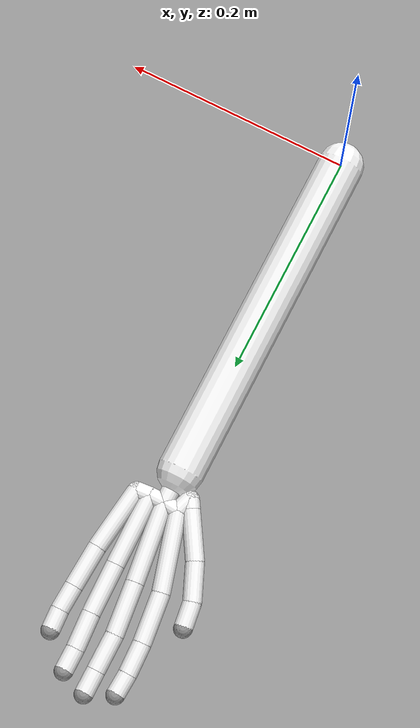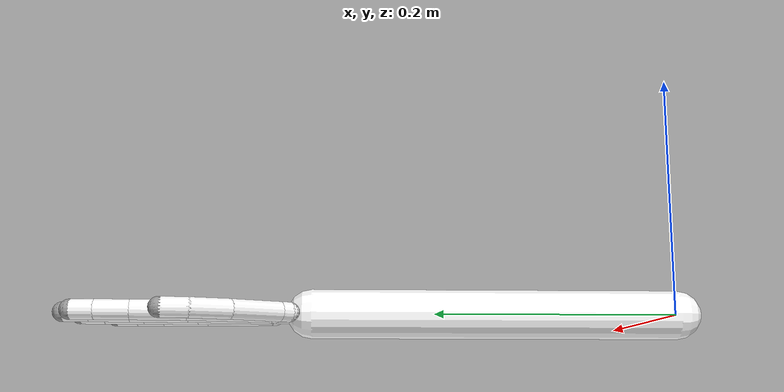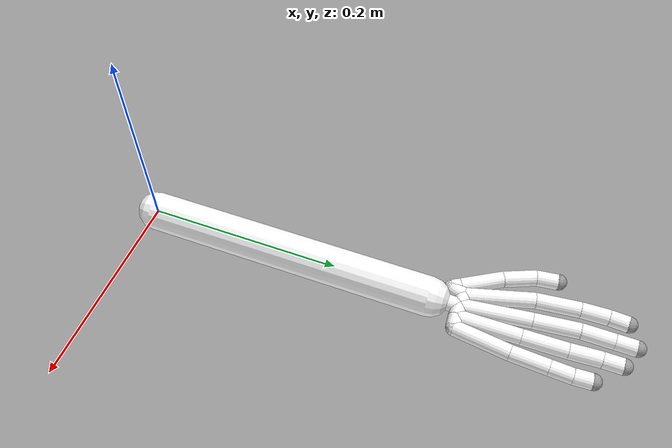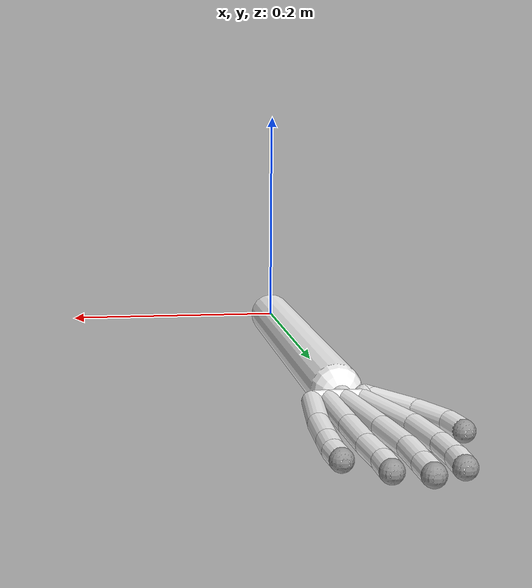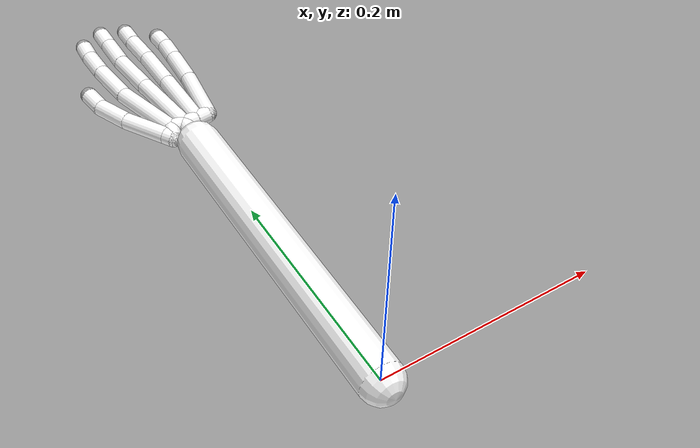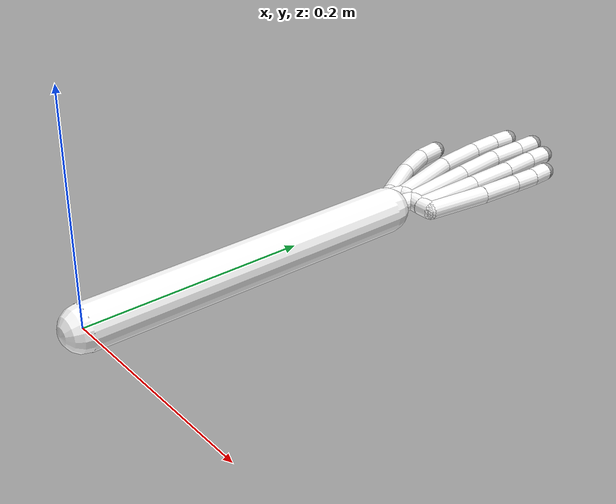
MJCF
<?xml version="1.0" ?>
<mujoco>
  <compiler angle="radian"/>
  <option collision="predefined"/>
  <default>
    <joint limited="true" range="-0.5235987755982988 0.5235987755982988" damping="0.1" armature="0.001"/>
    <position ctrllimited="true" ctrlrange="-0.5235987755982988 0.5235987755982988" kp="1."/>
    <geom rgba="1 1 1 1"/>
  </default>
  <worldbody>
    <body name="toplevel_body1">
      <body name="toplevel_body2">
        <joint name="elbow_pitch" type="hinge" axis="1 0 0" range="-0.6981317007977318 0.6981317007977318" damping="3"/>
        <body name="forearm">
          <geom name="forearm_geom" type="capsule" fromto="0 0 0 0 0.3 0" size="0.02"/>
          <body name="wrist" pos="0 0.3 0">
            <joint name="wrist_pitch" type="hinge" axis="1 0 0" range="-0.6981317007977318 0.6981317007977318" damping="3"/>
            <joint name="wrist_yaw" type="hinge" axis="0 1 0" range="0 1.5707963267948966" damping="3"/>
            <body name="root" pos="0 0 0">
              <geom name="root_geom" type="capsule" fromto="0 0 0 0.0 0.03 0.0" size="0.008"/>
              <body name="middle2index" pos="0.0 0.03 0.0">
                <geom name="middle2index_geom" type="capsule" fromto="0 0 0 -0.013 0.001 0.0" size="0.008"/>
                <body name="index2thumb" pos="-0.013 0.001 0.0">
                  <geom name="index2thumb_geom" type="capsule" fromto="0 0 0 -0.00467199999999999 -0.013741599999999998 0.0" size="0.008"/>
                  <body name="thumb_t" pos="-0.00467199999999999 -0.013741599999999998 0.0">
                    <geom name="thumb_t_geom" type="capsule" fromto="0 0 0 -0.004538000000000003 0.007398599999999999 0.0" size="0.008"/>
                    <joint name="thumb_t_joint" type="hinge" axis="0.3 1.0 0.3" range="-1.5 0"/>
                    <body name="thumb_mc" pos="-0.004538000000000003 0.007398599999999999 0.0">
                      <geom name="thumb_mc_geom" type="capsule" fromto="0 0 0 -0.022690000000000016 0.036993 0.0" size="0.008"/>
                      <joint name="thumb_mc_joint" type="hinge" axis="0.3 -0.5 1.0" range="-0.2 1.2"/>
                      <body name="thumb_pp" pos="-0.022690000000000016 0.036993 0.0">
                        <geom name="thumb_pp_geom" type="capsule" fromto="0 0 0 -0.013099999999999994 0.030350000000000002 0.0" size="0.008"/>
                        <joint name="thumb_pp_joint" type="hinge" axis="0.9181248990731756 0.3962911425983062 0.8" range="-1.5 0"/>
                        <body name="thumb_dp" pos="-0.013099999999999994 0.030350000000000002 0.0">
                          <geom name="thumb_dp_geom" type="capsule" fromto="0 0 0 -0.003 0.022 0.0" size="0.008"/>
                          <joint name="thumb_dp_joint" type="hinge" axis="0.990830168044299 0.1351132047333135 0.8" range="-1.5 0"/>
                          <body name="fingertip_0" pos="-0.003 0.022 0.0">
                            <geom name="fingertip_0_geom" type="sphere" size="0.00808" rgba="0.6 0.6 0.6 1"/>
                          </body>
                        </body>
                      </body>
                    </body>
                  </body>
                </body>
                <body name="index_mc" pos="-0.013 0.001 0.0">
                  <geom name="index_mc_geom" type="capsule" fromto="0 0 0 -0.018999999999999996 0.066 0.0" size="0.008"/>
                  <body name="index_pp" pos="-0.018999999999999996 0.066 0.0">
                    <geom name="index_pp_geom" type="capsule" fromto="0 0 0 -0.005 0.043 0.0" size="0.008"/>
                    <joint name="index_pp_joint" type="hinge" axis="0.9933073803012535 0.11550085817456437 0.0" range="-1.5 0"/>
                    <body name="index_mp" pos="-0.005 0.043 0.0">
                      <geom name="index_mp_geom" type="capsule" fromto="0 0 0 -0.001 0.027 0.0" size="0.008"/>
                      <joint name="index_mp_joint" type="hinge" axis="0.9993148337667671 0.037011660509880265 0.0" range="-1.5 0"/>
                      <body name="index_dp" pos="-0.001 0.027 0.0">
                        <geom name="index_dp_geom" type="capsule" fromto="0 0 0 0.001 0.019 0.0" size="0.008"/>
                        <joint name="index_dp_joint" type="hinge" axis="0.9986178293325098 -0.052558833122763673 0.0" range="-1.5 0"/>
                        <body name="fingertip_1" pos="0.001 0.019 0.0">
                          <geom name="fingertip_1_geom" type="sphere" size="0.00808" rgba="0.6 0.6 0.6 1"/>
                        </body>
                      </body>
                    </body>
                  </body>
                </body>
              </body>
              <body name="middle2ring" pos="0.0 0.03 0.0">
                <geom name="middle2ring_geom" type="capsule" fromto="0 0 0 0.013 0.0 0.0" size="0.008"/>
                <body name="ring2pinky" pos="0.013 0.0 0.0">
                  <geom name="ring2pinky_geom" type="capsule" fromto="0 0 0 0.012 0.001 0.0" size="0.008"/>
                  <body name="pinky_mc" pos="0.012 0.001 0.0">
                    <geom name="pinky_mc_geom" type="capsule" fromto="0 0 0 0.007 0.056 0.0" size="0.008"/>
                    <body name="pinky_pp" pos="0.007 0.056 0.0">
                      <geom name="pinky_pp_geom" type="capsule" fromto="0 0 0 0.002 0.037 0.0" size="0.008"/>
                      <joint name="pinky_pp_joint" type="hinge" axis="0.9985422732775083 -0.05397525801500046 0.0" range="-1.5 0"/>
                      <body name="pinky_mp" pos="0.002 0.037 0.0">
                        <geom name="pinky_mp_geom" type="capsule" fromto="0 0 0 0.001 0.022 0.0" size="0.008"/>
                        <joint name="pinky_mp_joint" type="hinge" axis="0.9989685402102996 -0.045407660918649985 0.0" range="-1.5 0"/>
                        <body name="pinky_dp" pos="0.001 0.022 0.0">
                          <geom name="pinky_dp_geom" type="capsule" fromto="0 0 0 -0.001 0.018 0.0" size="0.008"/>
                          <joint name="pinky_dp_joint" type="hinge" axis="0.9984603532054124 0.05547001962252292 0.0" range="-1.5 0"/>
                          <body name="fingertip_2" pos="-0.001 0.018 0.0">
                            <geom name="fingertip_2_geom" type="sphere" size="0.00808" rgba="0.6 0.6 0.6 1"/>
                          </body>
                        </body>
                      </body>
                    </body>
                  </body>
                </body>
                <body name="ring_mc" pos="0.013 0.0 0.0">
                  <geom name="ring_mc_geom" type="capsule" fromto="0 0 0 -0.001 0.063 0.0" size="0.008"/>
                  <body name="ring_pp" pos="-0.001 0.063 0.0">
                    <geom name="ring_pp_geom" type="capsule" fromto="0 0 0 -0.001 0.044 0.0" size="0.008"/>
                    <joint name="ring_pp_joint" type="hinge" axis="0.9997418355449428 0.022721405353294154 0.0" range="-1.5 0"/>
                    <body name="ring_mp" pos="-0.001 0.044 0.0">
                      <geom name="ring_mp_geom" type="capsule" fromto="0 0 0 -0.002 0.031 0.0" size="0.008"/>
                      <joint name="ring_mp_joint" type="hinge" axis="0.9979253089684582 0.06438227799796505 0.0" range="-1.5 0"/>
                      <body name="ring_dp" pos="-0.002 0.031 0.0">
                        <geom name="ring_dp_geom" type="capsule" fromto="0 0 0 0.0 0.02 0.0" size="0.008"/>
                        <joint name="ring_dp_joint" type="hinge" axis="1.0 -0.0 0.0" range="-1.5 0"/>
                        <body name="fingertip_3" pos="0.0 0.02 0.0">
                          <geom name="fingertip_3_geom" type="sphere" size="0.00808" rgba="0.6 0.6 0.6 1"/>
                        </body>
                      </body>
                    </body>
                  </body>
                </body>
              </body>
              <body name="middle_mc" pos="0.0 0.03 0.0">
                <geom name="middle_mc_geom" type="capsule" fromto="0 0 0 -0.009 0.069 0.0" size="0.008"/>
                <body name="middle_pp" pos="-0.009 0.069 0.0">
                  <geom name="middle_pp_geom" type="capsule" fromto="0 0 0 -0.005 0.045 0.0" size="0.008"/>
                  <joint name="middle_pp_joint" type="hinge" axis="0.9938837346736189 0.11043152607484656 0.0" range="-1.5 0"/>
                  <body name="middle_mp" pos="-0.005 0.045 0.0">
                    <geom name="middle_mp_geom" type="capsule" fromto="0 0 0 0.0 0.032 0.0" size="0.008"/>
                    <joint name="middle_mp_joint" type="hinge" axis="1.0 -0.0 0.0" range="-1.5 0"/>
                    <body name="middle_dp" pos="0.0 0.032 0.0">
                      <geom name="middle_dp_geom" type="capsule" fromto="0 0 0 0.0 0.021 0.0" size="0.008"/>
                      <joint name="middle_dp_joint" type="hinge" axis="1.0 -0.0 0.0" range="-1.5 0"/>
                      <body name="fingertip_4" pos="0.0 0.021 0.0">
                        <geom name="fingertip_4_geom" type="sphere" size="0.00808" rgba="0.6 0.6 0.6 1"/>
                      </body>
                    </body>
                  </body>
                </body>
              </body>
            </body>
          </body>
        </body>
      </body>
    </body>
  </worldbody>
  <actuator>
    <position name="elbow_pitch" joint="elbow_pitch" ctrlrange="-0.6981317007977318 0.6981317007977318" kp="30."/>
    <position name="wrist_pitch" joint="wrist_pitch" ctrlrange="-0.6981317007977318 0.6981317007977318" kp="30."/>
    <position name="wrist_yaw" joint="wrist_yaw" ctrlrange="0 1.5707963267948966" kp="30."/>
    <position name="thumb_t_joint" joint="thumb_t_joint" ctrlrange="-1.5 0"/>
    <position name="thumb_mc_joint" joint="thumb_mc_joint" ctrlrange="-0.2 1.2"/>
    <position name="thumb_pp_joint" joint="thumb_pp_joint" ctrlrange="-1.5 0"/>
    <position name="thumb_dp_joint" joint="thumb_dp_joint" ctrlrange="-1.5 0"/>
    <position name="index_pp_joint" joint="index_pp_joint" ctrlrange="-1.5 0"/>
    <position name="index_mp_joint" joint="index_mp_joint" ctrlrange="-1.5 0"/>
    <position name="index_dp_joint" joint="index_dp_joint" ctrlrange="-1.5 0"/>
    <position name="pinky_pp_joint" joint="pinky_pp_joint" ctrlrange="-1.5 0"/>
    <position name="pinky_mp_joint" joint="pinky_mp_joint" ctrlrange="-1.5 0"/>
    <position name="pinky_dp_joint" joint="pinky_dp_joint" ctrlrange="-1.5 0"/>
    <position name="ring_pp_joint" joint="ring_pp_joint" ctrlrange="-1.5 0"/>
    <position name="ring_mp_joint" joint="ring_mp_joint" ctrlrange="-1.5 0"/>
    <position name="ring_dp_joint" joint="ring_dp_joint" ctrlrange="-1.5 0"/>
    <position name="middle_pp_joint" joint="middle_pp_joint" ctrlrange="-1.5 0"/>
    <position name="middle_mp_joint" joint="middle_mp_joint" ctrlrange="-1.5 0"/>
    <position name="middle_dp_joint" joint="middle_dp_joint" ctrlrange="-1.5 0"/>
  </actuator>
</mujoco>
